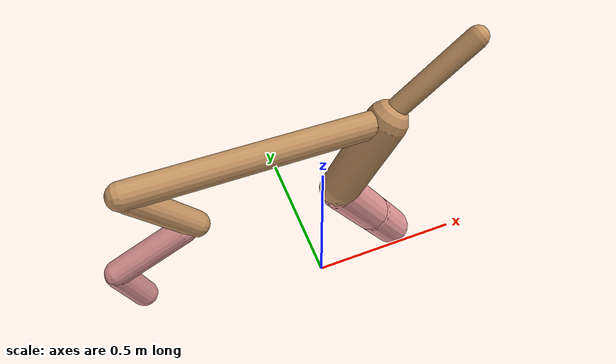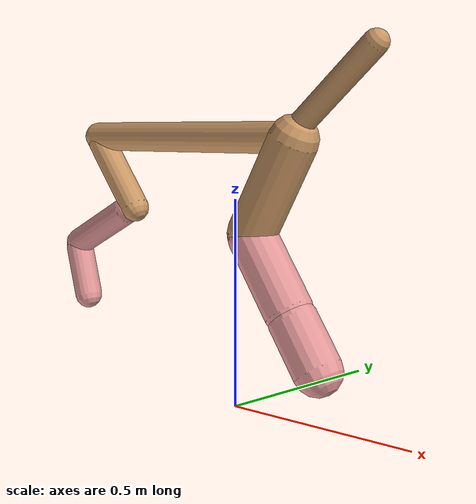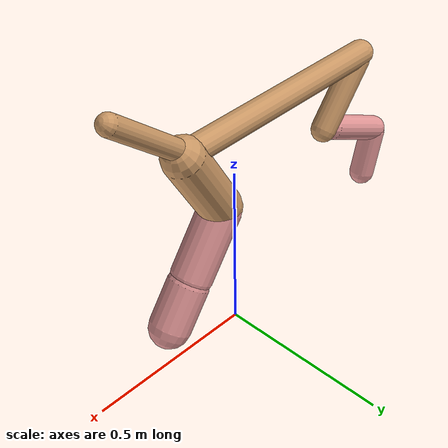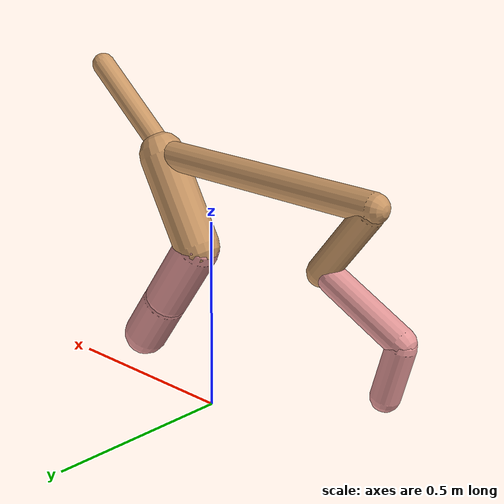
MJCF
<mujoco model="cheetah">
  <compiler angle="radian" coordinate="local" inertiafromgeom="true" settotalmass="14" />
  <default>
    <joint armature=".1" damping=".01" limited="true" solimplimit="0 .8 .03" solreflimit=".02 1" stiffness="8" />
    <geom conaffinity="0" condim="3" contype="1" friction="0.8 .1 .1" rgba="0.8 0.6 .4 1" solimp="0.0 0.8 0.01" solref="0.02 1" />
    <motor ctrllimited="true" ctrlrange="-1 1" />
  </default>
  <size nstack="300000" nuser_geom="1" />
  <option gravity="0 0 -9.81" timestep="0.01" />
  <worldbody>
    <body name="torso" pos="0.0 0.0 0.6455344480332023">
      <joint armature="0" axis="1 0 0" damping="0" limited="false" name="ignorex" pos="0 0 0" stiffness="0" type="slide" />
      <joint armature="0" axis="0 0 1" damping="0" limited="false" name="ignorez" pos="0 0 0" stiffness="0" type="slide" />
      <joint armature="0" axis="0 1 0" damping="0" limited="false" name="ignorey" pos="0 0 0" stiffness="0" type="hinge" />
      <geom fromto="-0.5 0.0 0.0 0.18037306512305562 0.0 0.0" name="torso" size="0.03691045821783152" type="capsule" />
      <geom axisangle="0 1 0 .87" name="head" pos="0.2803730651230556 0.0 0.1" size="0.029281674133842084 0.15" type="capsule" />

      <body name="bthigh" pos="-.5 0 0">
        <joint axis="0 1 0" damping="6" name="bthigh" pos="0 0 0" range="-.52 1.05" stiffness="240" type="hinge" />
        <geom axisangle="0 1 0 -3.8" name="bthigh" pos="0.07664676933659077 0.0 -0.099640800137568" size="0.03603649778579585 0.1066978538629297" type="capsule" />
        <body name="bshin" pos="0.11329353867318154 0.0 -0.189281600275136">
          <joint axis="0 1 0" damping="4.5" name="bshin" pos="0 0 0" range="-.785 .785" stiffness="180" type="hinge" />
          <geom axisangle="0 1 0 -2.03" name="bshin" pos="-0.10456019209105374 0.0 -0.05228009604552687" rgba="0.9 0.6 0.6 1" size="0.03603649778579585 0.11037709020303073" type="capsule" />
          <body name="bfoot" pos="-0.2091203841821075 0.0 -0.10456019209105374">
            <joint axis="0 1 0" damping="3" name="bfoot" pos="0 0 0" range="-.4 .785" stiffness="120" type="hinge" />
            <geom axisangle="0 1 0 -.27" name="bfoot" pos="0.022663381354445337 0.0 -0.07327826637937326" rgba="0.9 0.6 0.6 1" size="0.03603649778579585 0.06916964319389926" type="capsule" />
            <inertial mass="10" />
          </body>
        </body>
      </body>
      <body name="fthigh" pos="0.18037306512305562 0.0 0.0">
        <joint axis="0 1 0" damping="4.5" name="fthigh" pos="0 0 0" range="-1.5 0.8" stiffness="180" type="hinge" />
        <geom axisangle="0 1 0 .52" name="fthigh" pos="-0.06618200774178067 0.0 -0.11345487041448114" size="0.05861799587270189 0.12542267948579072" type="capsule" />
        <body name="fshin" pos="-0.13236401548356133 0.0 -0.2269097408289623">
          <joint axis="0 1 0" damping="3" name="fshin" pos="0 0 0" range="-1.2 1.1" stiffness="120" type="hinge" />
          <geom axisangle="0 1 0 -.6" name="fshin" pos="0.06146418303790086 0.0 -0.08510425343709349" rgba="0.9 0.6 0.6 1" size="0.05861799587270189 0.09996093252250988" type="capsule" />
          <body name="ffoot" pos="0.12292836607580172 0.0 -0.17020850687418698">
            <joint axis="0 1 0" damping="1.5" name="ffoot" pos="0 0 0" range="-3.1 -0.3" stiffness="60" type="hinge" />
            <geom axisangle="0 1 0 -.6" name="ffoot" pos="0.04284342442638201 0.0 -0.06664532688548314" rgba="0.9 0.6 0.6 1" size="0.05861799587270189 0.0660119365714688" type="capsule" />
            <inertial mass="10" />
          </body>
        </body>
      </body>
    </body>
  </worldbody>
  <actuator>
    <motor gear="120" joint="bthigh" name="bthigh" />
    <motor gear="90" joint="bshin" name="bshin" />
    <motor gear="60" joint="bfoot" name="bfoot" />
    <motor gear="120" joint="fthigh" name="fthigh" />
    <motor gear="60" joint="fshin" name="fshin" />
    <motor gear="30" joint="ffoot" name="ffoot" />
  </actuator>
</mujoco>
